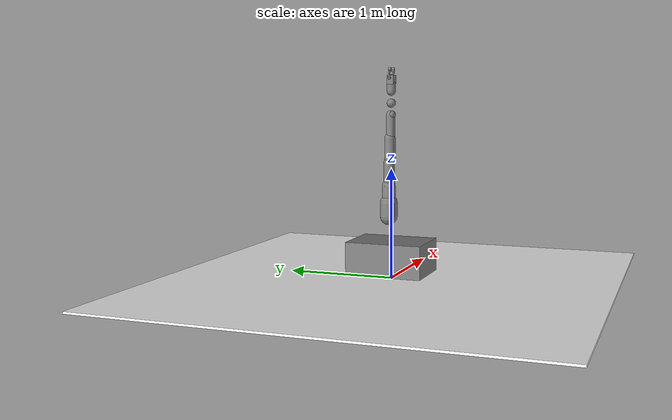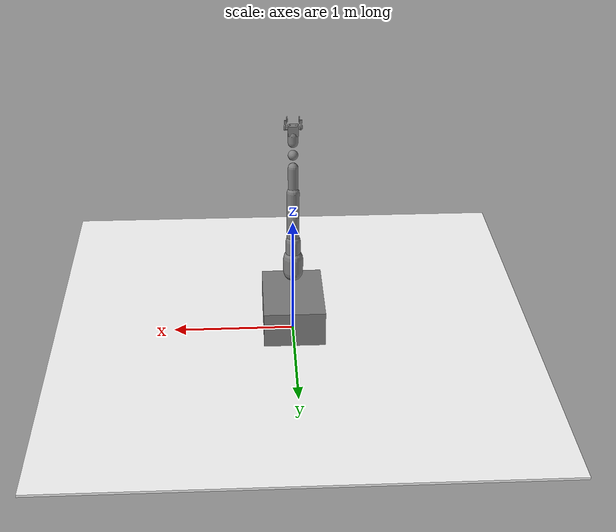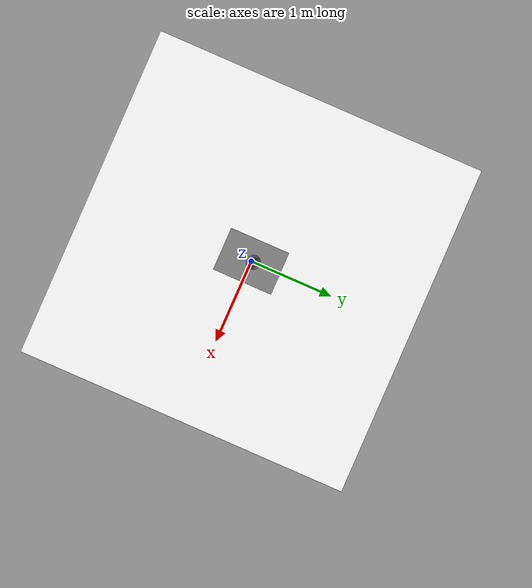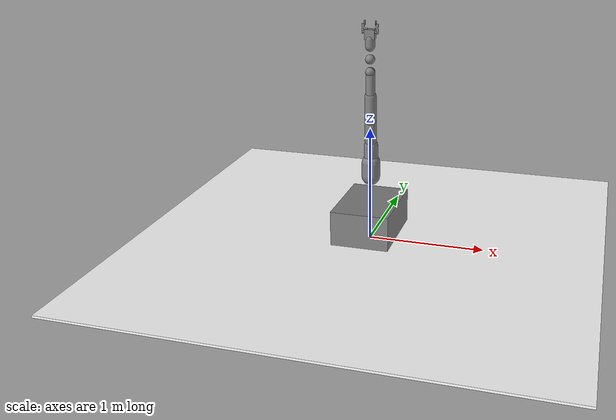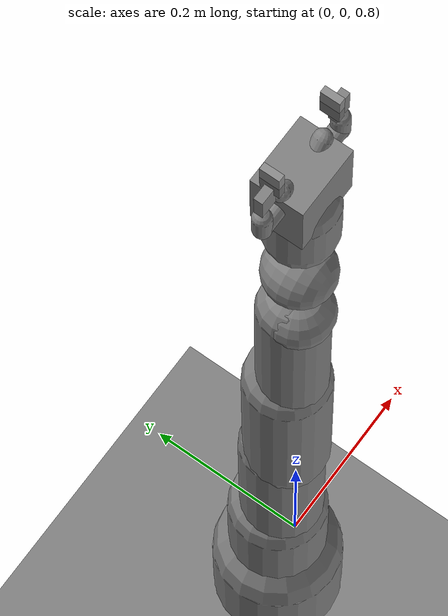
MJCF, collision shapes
<mujoco model="Omni_Kinova_Cobot">
  <compiler angle="radian" autolimits="true" />
  <option integrator="implicitfast" cone="elliptic" impratio="10" timestep="0.002" />
  <visual>
    <global offwidth="1920" offheight="1080" />
  </visual>
  <default>
    <default class="visual">
      <geom type="mesh" contype="0" conaffinity="0" group="2" rgba="0.75294 0.75294 0.75294 1" />
    </default>
    <default class="collision">
      <geom type="capsule" group="3" />
    </default>
    <default class="large_actuator">
      <position kp="2000" kv="100" forcerange="-105 105" />
    </default>
    <default class="small_actuator">
      <position kp="500" kv="50" forcerange="-52 52" />
    </default>
    <site size="0.001" rgba="0.5 0.5 0.5 0.3" group="4" />
    <default class="2f85">
      <mesh scale="0.001 0.001 0.001" />
      <general biastype="affine" />
      <joint axis="1 0 0" />
      <default class="driver">
        <joint range="0 0.8" armature="0.005" damping="0.1" solimplimit="0.95 0.99 0.001" solreflimit="0.005 1" />
      </default>
      <default class="follower">
        <joint range="-0.872664 0.872664" armature="0.001" pos="0 -0.018 0.0065" solimplimit="0.95 0.99 0.001" solreflimit="0.005 1" />
      </default>
      <default class="spring_link">
        <joint range="-0.29670597283 0.8" armature="0.001" stiffness="0.05" springref="2.62" damping="0.00125" />
      </default>
      <default class="coupler">
        <joint range="-1.57 0" armature="0.001" solimplimit="0.95 0.99 0.001" solreflimit="0.005 1" />
      </default>
      <default class="2f85_visual">
        <geom type="mesh" contype="0" conaffinity="0" group="2" />
      </default>
      <default class="2f85_collision">
        <geom type="box" group="3" />
        <default class="pad_box1">
          <geom mass="0" type="box" pos="0 -0.0026 0.028125" size="0.011 0.004 0.009375" friction="0.7" solimp="0.95 0.99 0.001" solref="0.004 1" priority="1" rgba="0.55 0.55 0.55 1" />
        </default>
        <default class="pad_box2">
          <geom mass="0" type="box" pos="0 -0.0026 0.009375" size="0.011 0.004 0.009375" friction="0.6" solimp="0.95 0.99 0.001" solref="0.004 1" priority="1" rgba="0.45 0.45 0.45 1" />
        </default>
      </default>
    </default>
  </default>
  <asset>
    <mesh name="base_link" file="kinova_gen3/assets/base_link.stl" />
    <mesh name="shoulder_link" file="kinova_gen3/assets/shoulder_link.stl" />
    <mesh name="half_arm_1_link" file="kinova_gen3/assets/half_arm_1_link.stl" />
    <mesh name="half_arm_2_link" file="kinova_gen3/assets/half_arm_2_link.stl" />
    <mesh name="forearm_link" file="kinova_gen3/assets/forearm_link.stl" />
    <mesh name="spherical_wrist_1_link" file="kinova_gen3/assets/spherical_wrist_1_link.stl" />
    <mesh name="spherical_wrist_2_link" file="kinova_gen3/assets/spherical_wrist_2_link.stl" />
    <mesh name="bracelet_with_vision_link" file="kinova_gen3/assets/bracelet_with_vision_link.stl" />
    <material name="metal" rgba="0.58 0.58 0.58 1" />
    <material name="silicone" rgba="0.1882 0.1882 0.1882 1" />
    <material name="gray" rgba="0.4627 0.4627 0.4627 1" />
    <material name="black" rgba="0.149 0.149 0.149 1" />
    <mesh class="2f85" file="robotiq_2f85/assets/base_mount.stl" />
    <mesh class="2f85" file="robotiq_2f85/assets/base.stl" />
    <mesh class="2f85" file="robotiq_2f85/assets/driver.stl" />
    <mesh class="2f85" file="robotiq_2f85/assets/coupler.stl" />
    <mesh class="2f85" file="robotiq_2f85/assets/follower.stl" />
    <mesh class="2f85" file="robotiq_2f85/assets/pad.stl" />
    <mesh class="2f85" file="robotiq_2f85/assets/silicone_pad.stl" />
    <mesh class="2f85" file="robotiq_2f85/assets/spring_link.stl" />
    <mesh name="cobot_base_link" file="cobot_base/assets/base_link.stl" />
  </asset>
  <worldbody>
    <light pos="0 0 1.5" dir="0 0 -1" directional="true" />
    <geom name="floor" type="box" size="2 2 0.01" pos="0 0 -0.01" rgba="1 1 1 1" />
    <body name="omni_chassis" pos="0 0 0.1">
      <body name="kinect_camera_z_rot" pos="0.06 -0.36 1.0" euler="0 0 -1.461">
        <body name="kinect_camera_x_rot" pos="0 0 0" euler="1.309 0 0">
          <camera name="kinect" pos="0 0 0" quat="1 0 0 0" fovy="65" resolution="1280 720" />
        </body>
      </body>
      <geom type="mesh" mesh="cobot_base_link" mass="20.0" rgba="0.2 0.2 0.2 0.5" euler="1.571 0 0" contype="0" conaffinity="0" />
      <geom type="box" size="0.25 0.35 0.15" pos="0 0 0.1" class="collision" />
      <joint name="base_x"   type="slide" axis="1 0 0" damping="20" />
      <joint name="base_y"   type="slide" axis="0 1 0" damping="20" />
      <joint name="base_yaw" type="hinge" axis="0 0 1" damping="10" />
      <body name="base_link" pos="0 .025 0.469" euler="0 0 0">
        <inertial pos="-0.000648 -0.000166 0.084487" quat="0.999294 0.00139618 -0.0118387 0.035636" mass="1.697" diaginertia="0.00462407 0.00449437 0.00207755" />
        <geom class="visual" mesh="base_link" />
        <geom type="capsule" size="0.08" fromto="0 0 0 0 0 0.12" class="collision" />
        <body name="shoulder_link" pos="0 0 0.15643" quat="0 1 0 0">
          <inertial pos="-2.3e-05 -0.010364 -0.07336" quat="0.707051 0.0451246 -0.0453544 0.704263" mass="1.3773" diaginertia="0.00488868 0.00457 0.00135132" />
          <joint name="joint_1" />
          <geom class="visual" mesh="shoulder_link" />
          <geom type="capsule" fromto="0 0 0 0 0 -0.12" size="0.06" class="collision" />
          <body name="half_arm_1_link" pos="0 0.005375 -0.12838" quat="1 1 0 0">
            <inertial pos="-4.4e-05 -0.09958 -0.013278" quat="0.482348 0.516286 -0.516862 0.483366" mass="1.1636" diaginertia="0.0113017 0.011088 0.00102532" />
            <joint name="joint_2" range="-2.24 2.24" />
            <geom class="visual" mesh="half_arm_1_link" />
            <geom type="capsule" fromto="0 0 0 0 -0.21 0" size="0.05" class="collision" />
            <body name="half_arm_2_link" pos="0 -0.21038 -0.006375" quat="1 -1 0 0">
              <inertial pos="-4.4e-05 -0.006641 -0.117892" quat="0.706144 0.0213722 -0.0209128 0.707437" mass="1.1636" diaginertia="0.0111633 0.010932 0.00100671" />
              <joint name="joint_3" />
              <geom class="visual" mesh="half_arm_2_link" />
              <geom type="capsule" fromto="0 0 0 0 0 -0.21" size="0.05" class="collision" />
              <body name="forearm_link" pos="0 0.006375 -0.21038" quat="1 1 0 0">
                <inertial pos="-1.8e-05 -0.075478 -0.015006" quat="0.483678 0.515961 -0.515859 0.483455" mass="0.9302" diaginertia="0.00834839 0.008147 0.000598606" />
                <joint name="joint_4" range="-2.57 2.57" />
                <geom class="visual" mesh="forearm_link" />
                <geom type="capsule" fromto="0 0 0 0 -0.21 0" size="0.04" class="collision" />
                <body name="spherical_wrist_1_link" pos="0 -0.20843 -0.006375" quat="1 -1 0 0">
                  <inertial pos="1e-06 -0.009432 -0.063883" quat="0.703558 0.0707492 -0.0707492 0.703558" mass="0.6781" diaginertia="0.00165901 0.001596 0.000346988" />
                  <joint name="joint_5" />
                  <geom class="visual" mesh="spherical_wrist_1_link" />
                  <geom type="sphere" size="0.04" class="collision" />
                  <body name="spherical_wrist_2_link" pos="0 0.00017505 -0.10593" quat="1 1 0 0">
                    <inertial pos="1e-06 -0.045483 -0.00965" quat="0.44426 0.550121 -0.550121 0.44426" mass="0.6781" diaginertia="0.00170087 0.001641 0.00035013" />
                    <joint name="joint_6" range="-2.09 2.09" />
                    <geom class="visual" mesh="spherical_wrist_2_link" />
                    <geom type="sphere" size="0.04" class="collision" />
                    <body name="bracelet_link" pos="0 -0.10593 -0.00017505" quat="1 -1 0 0">
                      <inertial pos="0.000281 0.011402 -0.029798" quat="0.394358 0.596779 -0.577293 0.393789" mass="0.5" diaginertia="0.000657336 0.000587019 0.000320645" />
                      <joint name="joint_7" />
                      <geom class="visual" mesh="bracelet_with_vision_link" />
                      <geom type="capsule" size="0.04" fromto="0 0 0 0 0 -0.06" class="collision" />
                      <camera name="wrist" pos="0 -0.05639 -0.058475" quat="0 0 0 1" fovy="41.83792730009236" resolution="640 480" />
                      <site name="pinch_site" pos="0 0 -0.181525" quat="0 1 0 0" group="3" />
                      <body name="base" pos="0 0 -0.06149039" quat="0 -1 1 0" childclass="2f85">
                        <inertial mass="0.777441" pos="0 -2.70394e-05 0.0354675" quat="1 -0.00152849 0 0" diaginertia="0.000260285 0.000225381 0.000152708" />
                        <geom class="2f85_visual" mesh="base" material="black" />
                        <geom type="box" size="0.03 0.04 0.04" pos="0 0 0.04" class="collision" />
                        <site name="pinch" pos="0 0 0.145" type="sphere" group="5" rgba="0.9 0.9 0.9 1" size="0.005" />
                        <body name="right_driver" pos="0 0.0306011 0.054904">
                          <inertial mass="0.00899563" pos="2.96931e-12 0.0177547 0.00107314" quat="0.681301 0.732003 0 0" diaginertia="1.72352e-06 1.60906e-06 3.22006e-07" />
                          <joint name="right_driver_joint" class="driver" />
                          <geom class="2f85_visual" mesh="driver" material="gray" />
                          <geom class="2f85_collision" type="capsule" fromto="0 0 0 0 0.03 0" size="0.01" />
                          <body name="right_coupler" pos="0 0.0315 -0.0041">
                            <inertial mass="0.0140974" pos="0 0.00301209 0.0232175" quat="0.705636 -0.0455904 0.0455904 0.705636" diaginertia="4.16206e-06 3.52216e-06 8.88131e-07" />
                            <joint name="right_coupler_joint" class="coupler" />
                            <geom class="2f85_visual" mesh="coupler" material="black" />
                            <geom class="2f85_collision" type="capsule" fromto="0 0 0 0 0 0.025" size="0.01" />
                          </body>
                        </body>
                        <body name="right_spring_link" pos="0 0.0132 0.0609">
                          <inertial mass="0.0221642" pos="-8.65005e-09 0.0181624 0.0212658" quat="0.663403 -0.244737 0.244737 0.663403" diaginertia="8.96853e-06 6.71733e-06 2.63931e-06" />
                          <joint name="right_spring_link_joint" class="spring_link" />
                          <geom class="2f85_visual" mesh="spring_link" material="black" />
                          <geom class="2f85_collision" type="capsule" fromto="0 0 0 0 0.02 0.02" size="0.01" />
                          <body name="right_follower" pos="0 0.055 0.0375">
                            <inertial mass="0.0125222" pos="0 -0.011046 0.0124786" quat="1 0.1664 0 0" diaginertia="2.67415e-06 2.4559e-06 6.02031e-07" />
                            <joint name="right_follower_joint" class="follower" />
                            <geom class="2f85_visual" mesh="follower" material="black" />
                            <geom class="2f85_collision" type="box" size="0.005 0.01 0.015" pos="0 -0.01 0.01" />
                            <body name="right_pad" pos="0 -0.0189 0.01352">
                              <geom class="pad_box1" name="right_pad1" />
                              <geom class="pad_box2" name="right_pad2" />
                              <inertial mass="0.0035" pos="0 -0.0025 0.0185" quat="0.707107 0 0 0.707107" diaginertia="4.73958e-07 3.64583e-07 1.23958e-07" />
                              <geom class="2f85_visual" mesh="pad" />
                              <body name="right_silicone_pad">
                                <geom class="2f85_visual" mesh="silicone_pad" material="black" />
                              </body>
                            </body>
                          </body>
                        </body>
                        <body name="left_driver" pos="0 -0.0306011 0.054904" quat="0 0 0 1">
                          <inertial mass="0.00899563" pos="0 0.0177547 0.00107314" quat="0.681301 0.732003 0 0" diaginertia="1.72352e-06 1.60906e-06 3.22006e-07" />
                          <joint name="left_driver_joint" class="driver" mimic="right_driver_joint" />
                          <geom class="2f85_visual" mesh="driver" material="gray" />
                          <geom class="2f85_collision" type="capsule" fromto="0 0 0 0 0.03 0" size="0.01" />
                          <body name="left_coupler" pos="0 0.0315 -0.0041">
                            <inertial mass="0.0140974" pos="0 0.00301209 0.0232175" quat="0.705636 -0.0455904 0.0455904 0.705636" diaginertia="4.16206e-06 3.52216e-06 8.88131e-07" />
                            <joint name="left_coupler_joint" class="coupler" />
                            <geom class="2f85_visual" mesh="coupler" material="black" />
                            <geom class="2f85_collision" type="capsule" fromto="0 0 0 0 0 0.025" size="0.01" />
                          </body>
                        </body>
                        <body name="left_spring_link" pos="0 -0.0132 0.0609" quat="0 0 0 1">
                          <inertial mass="0.0221642" pos="-8.65005e-09 0.0181624 0.0212658" quat="0.663403 -0.244737 0.244737 0.663403" diaginertia="8.96853e-06 6.71733e-06 2.63931e-06" />
                          <joint name="left_spring_link_joint" class="spring_link" />
                          <geom class="2f85_visual" mesh="spring_link" material="black" />
                          <geom class="2f85_collision" type="capsule" fromto="0 0 0 0 0.02 0.02" size="0.01" />
                          <body name="left_follower" pos="0 0.055 0.0375">
                            <inertial mass="0.0125222" pos="0 -0.011046 0.0124786" quat="1 0.1664 0 0" diaginertia="2.67415e-06 2.4559e-06 6.02031e-07" />
                            <joint name="left_follower_joint" class="follower" />
                            <geom class="2f85_visual" mesh="follower" material="black" />
                            <geom class="2f85_collision" type="box" size="0.005 0.01 0.015" pos="0 -0.01 0.01" />
                            <body name="left_pad" pos="0 -0.0189 0.01352">
                              <geom class="pad_box1" name="left_pad1" />
                              <geom class="pad_box2" name="left_pad2" />
                              <inertial mass="0.0035" pos="0 -0.0025 0.0185" quat="1 0 0 1" diaginertia="4.73958e-07 3.64583e-07 1.23958e-07" />
                              <geom class="2f85_visual" mesh="pad" />
                              <body name="left_silicone_pad">
                                <geom class="2f85_visual" mesh="silicone_pad" material="black" />
                              </body>
                            </body>
                          </body>
                        </body>
                      </body>
                    </body>
                  </body>
                </body>
              </body>
            </body>
          </body>
        </body>
      </body>
    </body>
  </worldbody>
  <contact>
    <exclude body1="base" body2="left_driver" />
    <exclude body1="base" body2="right_driver" />
    <exclude body1="base" body2="left_spring_link" />
    <exclude body1="base" body2="right_spring_link" />
    <exclude body1="right_coupler" body2="right_follower" />
    <exclude body1="left_coupler" body2="left_follower" />
  </contact>
  <equality>
    <connect anchor="0 0 0" body1="right_follower" body2="right_coupler" solimp="0.95 0.99 0.001" solref="0.005 1" />
    <connect anchor="0 0 0" body1="left_follower" body2="left_coupler" solimp="0.95 0.99 0.001" solref="0.005 1" />
  </equality>

  <tendon>
    <fixed name="split">
      <joint joint="right_driver_joint" coef="0.5" />
      <joint joint="left_driver_joint" coef="0.5" />
    </fixed>
  </tendon>

  <actuator>
    <velocity name="cmd_vel_x" joint="base_x" kv="5000" ctrllimited="true" ctrlrange="-10 10" />
    <velocity name="cmd_vel_y" joint="base_y" kv="5000" ctrllimited="true" ctrlrange="-10 10" />
    <velocity name="cmd_vel_yaw" joint="base_yaw" kv="5000" ctrllimited="true" ctrlrange="-3.14 3.14" />
    <position class="large_actuator" name="joint_1" joint="joint_1" />
    <position class="large_actuator" name="joint_2" joint="joint_2" ctrlrange="-2.2497294058206907 2.2497294058206907" />
    <position class="large_actuator" name="joint_3" joint="joint_3" />
    <position class="large_actuator" name="joint_4" joint="joint_4" ctrlrange="-2.5795966344476193 2.5795966344476193" />
    <position class="small_actuator" name="joint_5" joint="joint_5" />
    <position class="small_actuator" name="joint_6" joint="joint_6" ctrlrange="-2.0996310901491784 2.0996310901491784" />
    <position class="small_actuator" name="joint_7" joint="joint_7" />
    <general class="2f85" name="fingers_actuator" tendon="split" forcerange="-5 5" ctrlrange="0 255" gainprm="0.3137255 0 0" biasprm="0 -100 -10" ctrllimited="true" />
  </actuator>
  <keyframe>
    <key name="home" qpos="0 0.26179939 3.14159265 -2.26892803 0 0.95993109 1.57079633 0 0 0 0 0 0 0 0" ctrl="0 0.26179939 3.14159265 -2.26892803 0 0.95993109 1.57079633 0" />
    <key name="retract" qpos="0 -0.34906585 3.14159265 -2.54818071 0 -0.87266463 1.57079633 0 0 0 0 0 0 0 0" ctrl="0 -0.34906585 3.14159265 -2.54818071 0 -0.87266463 1.57079633 0" />
  </keyframe>
</mujoco>
